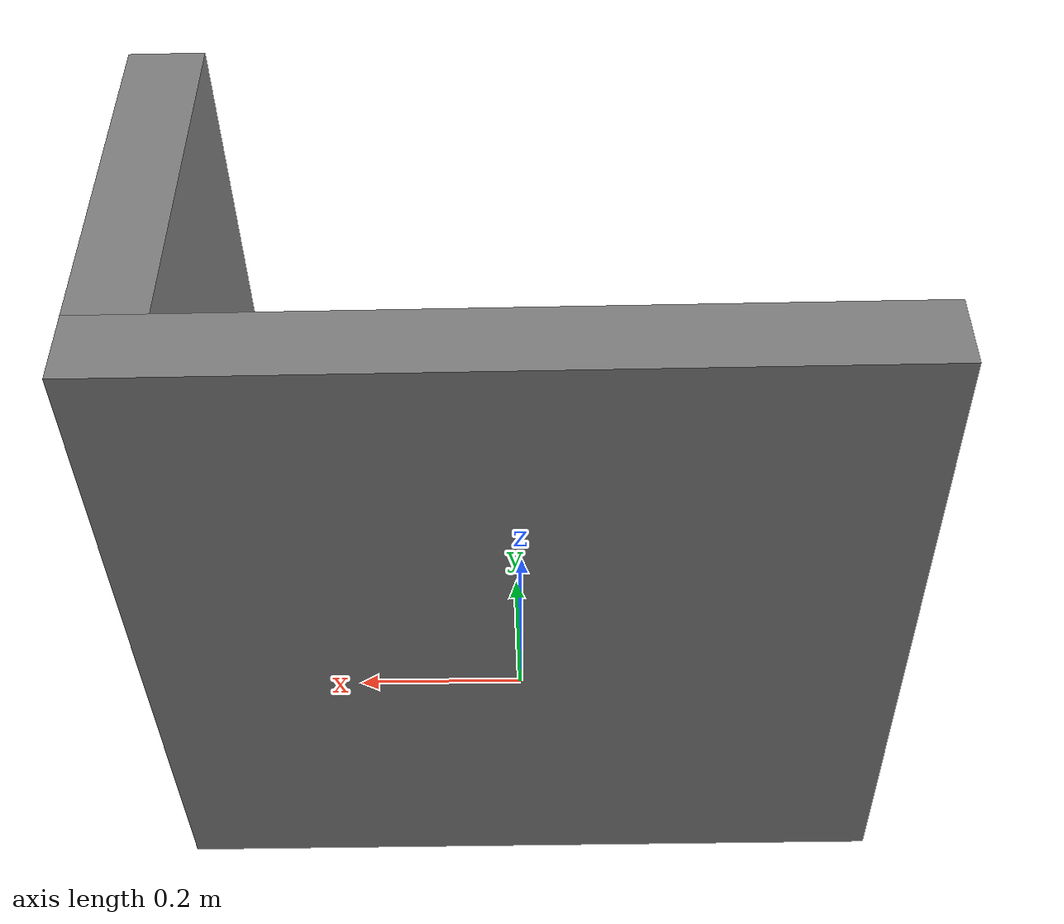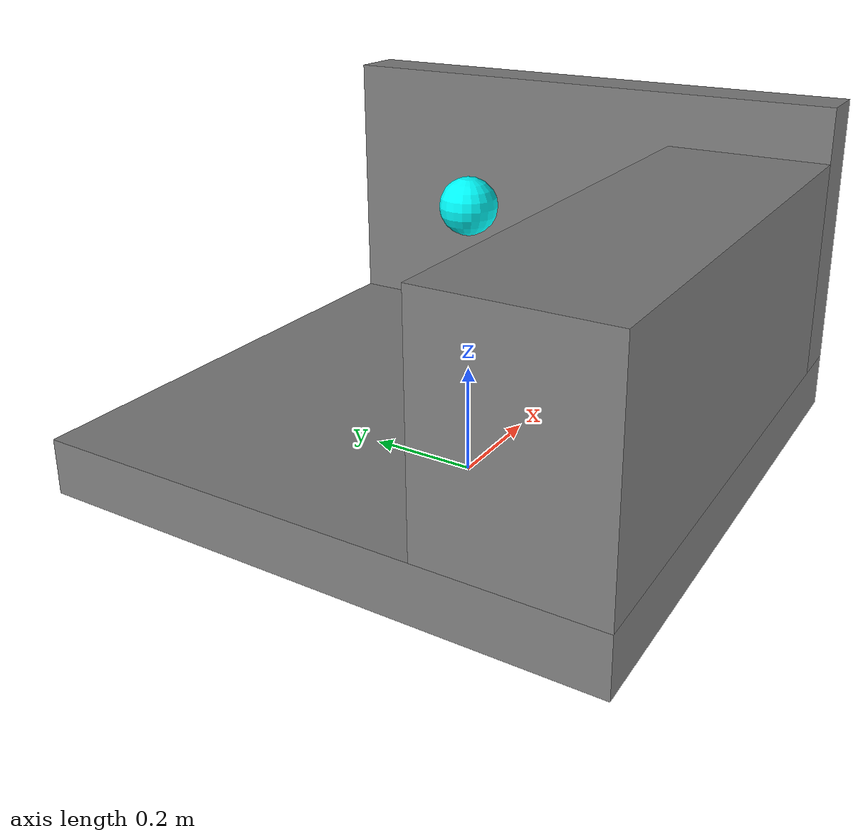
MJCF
<mujoco model="ry_convert">
  <asset />

  <visual>
    <headlight ambient="0.4 0.4 0.4" diffuse="0.8 0.8 0.8" specular="0.1 0.1 0.1"/>
    <map znear="0.01"/>
    <global offwidth="1200" offheight="800"/>
  </visual>

  <default>
    <default class="slider">
      <position forcerange="-150 150" kp="100" kv="10" ctrlrange="-10 10"/>
    </default>
    <default class="geom_fric">
      <geom friction = ".8 0.1 0.1"/>
    </default>
  </default>

  <actuator>
    <position name="l_joint1" joint="l_joint1" class="slider"/>
    <position name="l_joint2" joint="l_joint2" class="slider" />
    <position name="l_fing" joint="l_fing" class="slider" />
    <position name="r_joint1" joint="r_joint1" class="slider" />
    <position name="r_joint2" joint="r_joint2" class="slider" />
    <position name="r_fing" joint="r_fing" class="slider" />
  </actuator>

  <worldbody>
    <body name="l_base" pos="0.0 0.0 0.5">
      <body name="l_joint1">
        <joint name="l_joint1" damping="0.1" type="slide" axis="1 0 0" />
        <inertial pos="0 0 0" mass="0.01" diaginertia="1e-5 1e-5 1e-5" />
        <body name="l_joint2">
          <joint name="l_joint2" damping="0.1" type="slide" axis="0 1 0" />
          <inertial pos="0 0 0" mass="0.01" diaginertia="1e-5 1e-5 1e-5" />
          <body name="l_fing">
            <joint name="l_fing" damping="0.1" type="slide" axis="0 0 1" />
            <geom type="sphere" size="0.05" rgba="0 1 1 1" mass="0.1" class="geom_fric"/>
          </body>
        </body>
      </body>
    </body>
    <body name="r_base" pos="0.0 0.0 0.5">
      <body name="r_joint1">
        <joint name="r_joint1" damping="0.1" type="slide" axis="1 0 0" />
        <inertial pos="0 0 0" mass="0.01" diaginertia="1e-5 1e-5 1e-5" />
        <body name="r_joint2">
          <joint name="r_joint2" damping="0.1" type="slide" axis="0 1 0" />
          <inertial pos="0 0 0" mass="0.01" diaginertia="1e-5 1e-5 1e-5" />
          <body name="r_fing">
            <joint name="r_fing" damping="0.1" type="slide" axis="0 0 1" />
            <geom type="sphere" size="0.05" rgba="0 1 1 1" mass="0.1" class="geom_fric"/>
          </body>
        </body>
      </body>
    </body>
    <body name="base">
      <body name="table" pos="0.0 0.0 0.1">
        <geom type="box" size="0.5 0.5 0.05" class="geom_fric"/>
        <body name="wall" pos="0.45 0.0 0.3">
          <geom type="box" size="0.05 0.5 0.25" class="geom_fric"/>
        </body>
        <body name="box" pos="-0.05 -0.35 0.25">
          <geom type="box" size="0.45 0.15 0.2" class="geom_fric"/>
        </body>
      </body>
    </body>
    <body name="obj" pos="0.0 0.0 0.3">
      <freejoint />
      <geom type="sphere" size="0.1" rgba="1 .5 0 1" mass="0.2" class="geom_fric"/>
    </body>
  </worldbody>
</mujoco>
